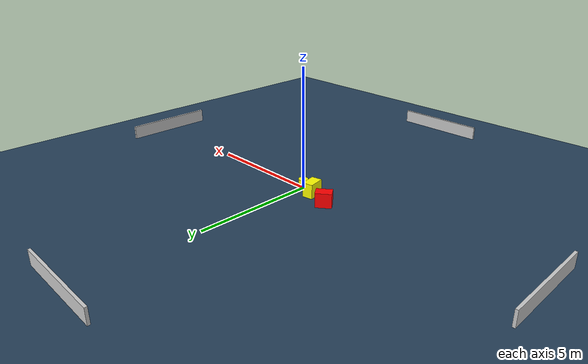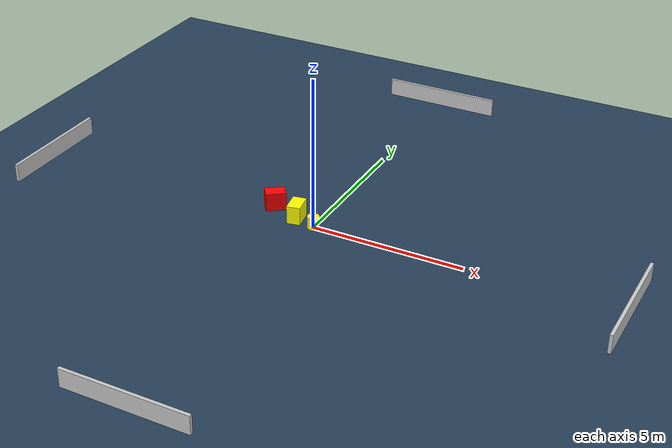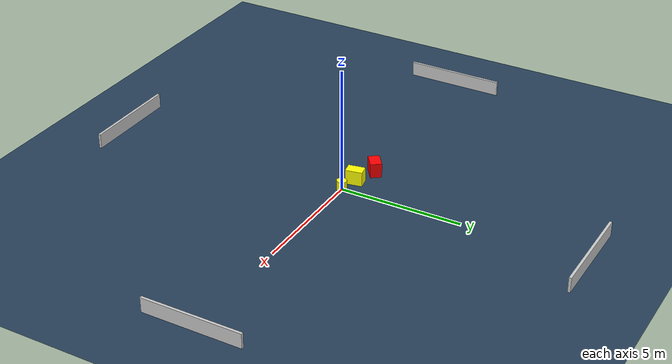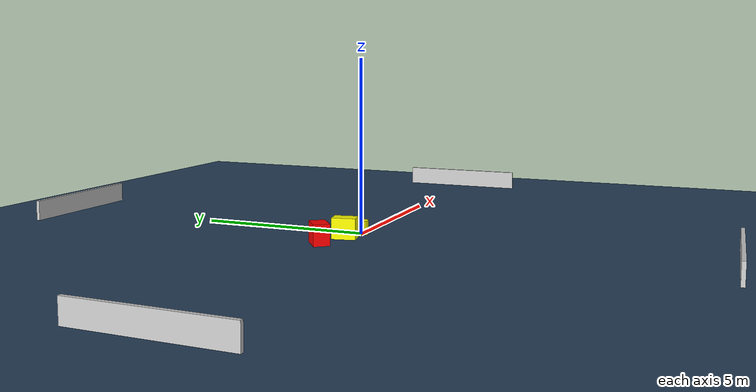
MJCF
<?xml version="1.0" ?>
<mujoco model="generated_environment">
  <option timestep="0.01" integrator="RK4" cone="elliptic"/>
  <default>
    <geom density="1"/>
  </default>
  <asset>
    <texture builtin="gradient" height="3072" name="skybox" rgb1="0.3 0.5 0.7" rgb2="0 0 0" type="skybox" width="512"/>
    <texture builtin="checker" height="300" name="groundplane" rgb1="0.2 0.3 0.4" rgb2="0.1 0.2 0.3" type="2d" width="300"/>
    <material name="groundplane" reflectance="0.2" texrepeat="5 5" texture="groundplane"/>
  </asset>
  <worldbody>
    <light dir="0 0 -1" directional="true" pos="0 0 1.5"/>
    <geom condim="3" friction="0.5 0.005 0.001" material="groundplane" name="floor" pos="0 0 0" size="0 0 0.05" type="plane"/>
    <body name="walls">
      <geom name="wall_1" condim="4" pos="-10.0 0.0 0.3" rgba="0.800000011920929 0.800000011920929 0.800000011920929 1.0" size="0.05 2.0 0.3" type="box"/>
      <geom name="wall_2" condim="4" pos="10.0 0.0 0.3" rgba="0.800000011920929 0.800000011920929 0.800000011920929 1.0" size="0.05 2.0 0.3" type="box"/>
      <geom name="wall_3" condim="4" pos="0.0 -10.0 0.3" rgba="0.800000011920929 0.800000011920929 0.800000011920929 1.0" size="2.0 0.05 0.3" type="box"/>
      <geom name="wall_4" condim="4" pos="0.0 10.0 0.3" rgba="0.800000011920929 0.800000011920929 0.800000011920929 1.0" size="2.0 0.05 0.3" type="box"/>
    </body>
    <body name="robot">
      <joint name="joint_x" type="slide" pos="0 0 0" axis="1 0 0"/>
      <joint name="joint_y" type="slide" pos="0 0 0" axis="0 1 0"/>
      <geom name="robot" type="cylinder" pos="0.0 0.0 0.2" size="0.2 0.2 0.0" mass="5.0" friction="1.0 0.005 0.0001" condim="4" rgba="1.0 1.0 0.0 1.0"/>
    </body>
    <body name="obstacle_1_movable">
      <geom name="obstacle_1_movable" condim="4" pos="-0.7037939872822611 0.2017104030557502 0.3" euler="0 0 190.22711724935075" friction="0.0 0.005 0.001" rgba="1.0 1.0 0.0 1.0" size="0.219122382914139 0.3382392648529139 0.3" type="box" mass="0.1"/>
      <joint type="free"/>
    </body>
    <body name="obstacle_2_static">
      <geom name="obstacle_2_static" condim="4" pos="-1.659718450679049 0.5382047213170696 0.3" euler="0 0 216.96058632068312" friction="0.0 0.005 0.001" rgba="1.0 0.0 0.0 1.0" size="0.3275908279709866 0.22671955711327585 0.3" type="box"/>
    </body>
  </worldbody>
  <actuator>
    <motor name="actuator_x" joint="joint_x" gear="1" ctrlrange="-1 1"/>
    <motor name="actuator_y" joint="joint_y" gear="1" ctrlrange="-1 1"/>
  </actuator>
</mujoco>
